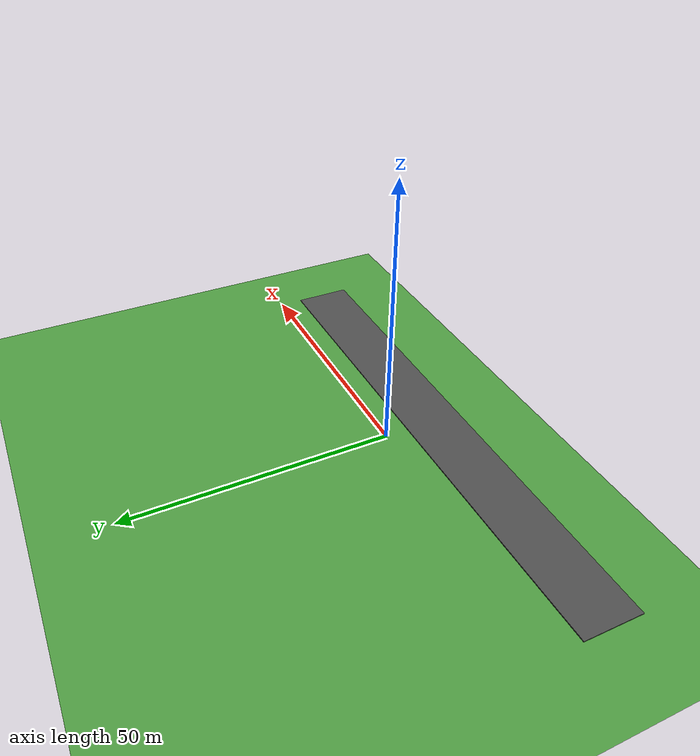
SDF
<sdf version="1.6">
 <world name="default">
  <light name="sun" type="directional">
   <pose>0 0 10 0 -0 0</pose>
   <diffuse>0.8 0.8 0.8 1</diffuse>
   <specular>0.2 0.2 0.2 1</specular>
   <attenuation>
    <range>1000</range>
    <constant>0.9</constant>
    <linear>0.01</linear>
    <quadratic>0.001</quadratic>
   </attenuation>
   <direction>-0.5 0.1 -0.9</direction>
  </light>
  <scene>
   <ambient>0.4 0.4 0.4 1</ambient>
   <background>0 0.9 1 1</background>
   <shadows>1</shadows>
   <grid>0</grid>
  </scene>
  <model name="ground_plane">
   <static>1</static>
   <link name="link">
    <collision name="collision">
     <geometry><plane><normal>0 0 1</normal><size>100 100</size></plane></geometry>
     <surface><friction><ode><mu>100</mu><mu2>50</mu2></ode></friction></surface>
    </collision>
    <visual name="visual">
     <cast_shadows>0</cast_shadows>
     <geometry><plane><normal>0 0 1</normal><size>10000 10000</size></plane></geometry>
     <material>
      <script><uri>file://media/materials/scripts/ds_sim.material</uri><name>DSSim/GrassBackground</name></script>
     </material>
    </visual>
   </link>
  </model>
  <gravity>0 0 -9.8</gravity>
  <magnetic_field>6e-06 2.3e-05 -4.2e-05</magnetic_field>
  <atmosphere type="adiabatic"/>
  <physics name="default_physics" default="0" type="ode">
   <max_step_size>0.001</max_step_size>
   <real_time_factor>1</real_time_factor>
   <real_time_update_rate>1000</real_time_update_rate>
  </physics>
  <scene>
   <ambient>0.4 0.4 0.4 1</ambient>
   <background>0.7 0.7 0.7 1</background>
   <shadows>1</shadows>
   <grid>0</grid>
  </scene>
  <spherical_coordinates>
   <surface_model>EARTH_WGS84</surface_model>
   <latitude_deg>0</latitude_deg>
   <longitude_deg>0</longitude_deg>
   <elevation>0</elevation>
   <heading_deg>0</heading_deg>
  </spherical_coordinates>
  <model name="(DS) Straight Road - 100m_0">
   <static>1</static>
   <link name="link">
    <inertial>
     <mass>1</mass>
     <inertia><ixx>1</ixx><iyy>1</iyy><izz>1</izz><ixy>0</ixy><ixz>0</ixz><iyz>0</iyz></inertia>
    </inertial>
    <collision name="collision">
     <geometry><mesh><uri>model://ds_straight_road_100m/meshes/straight_road_100m.dae</uri></mesh></geometry>
    </collision>
    <visual name="visual">
     <geometry><mesh><uri>model://ds_straight_road_100m/meshes/straight_road_100m.dae</uri></mesh></geometry>
     <material>
      <script><uri>file://media/materials/scripts/ds_sim.material</uri><name>DSSim/Road</name></script>
     </material>
    </visual>
   </link>
  </model>
 </world>
</sdf>
